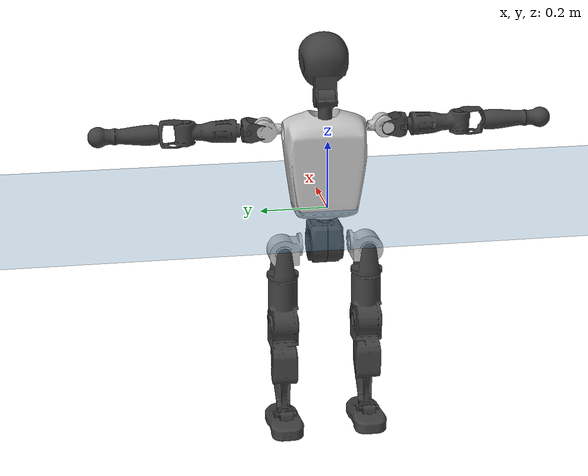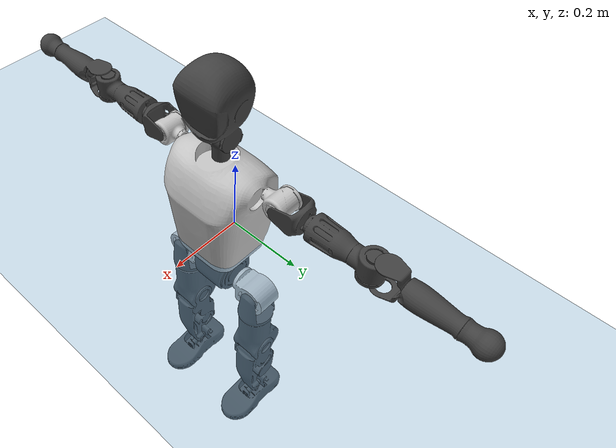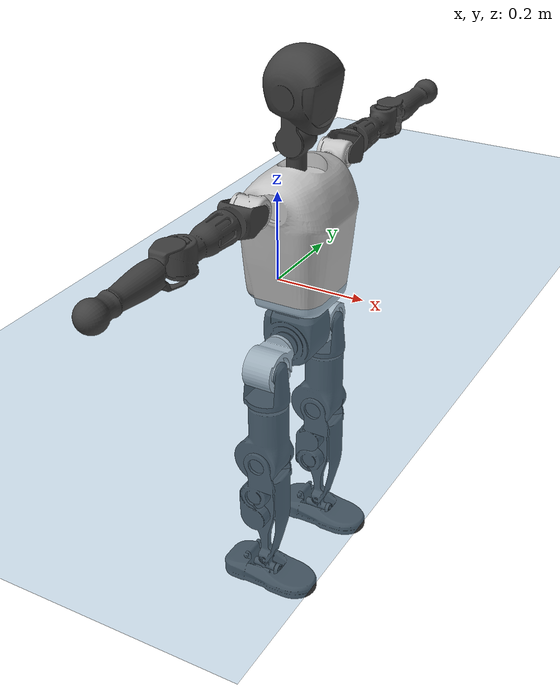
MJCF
<mujoco model="T1">
  <compiler angle="radian" assetdir="assets" balanceinertia="true" inertiafromgeom="false"/>

  <option timestep="0.005" density="1.2" viscosity="2e-05"/>

  <size nkey="1"/>

  <visual>
    <quality shadowsize="8192"/>
    <map shadowclip="0.5"/>
  </visual>

  <default>
    <default class="/">
      <joint armature="0.01" damping="0.01" frictionloss="0.1"/>
      <geom contype="0" conaffinity="0" group="1" solref="-1000 -80"/>
      <site size="0.01 0.005 0.005" group="5"/>
      <general forcelimited="true" biastype="affine" gainprm="25" biasprm="0 -25 -0.6"/>
      <default class="t1">
        <geom rgba="0.25 0.25 0.25 1"/>
        <default class="visual">
          <geom type="mesh" group="2"/>
        </default>
        <default class="collision">
          <geom group="3"/>
        </default>
        <default class="foot">
          <geom size="0.1115 0.05 0.015" type="box" condim="6" group="4" priority="1" solimp="0.015 1 0.015"/>
        </default>
        <default class="reward_collision_sphere">
          <geom group="5" rgba="1 0 0 1"/>
        </default>
      </default>
    </default>
  </default>

  <asset>
    <texture type="skybox" colorspace="auto" name="//unnamed_texture_0" builtin="gradient" rgb1="0.95 0.95 0.95" rgb2="0.95 0.95 0.95" width="100" height="600"/>
    <texture type="2d" colorspace="auto" name="texplane" builtin="checker" rgb1="0.345 0.575 0.748" rgb2="0.345 0.575 0.748" markrgb="1 1 1" width="512" height="512"/>
    <material name="MatPlane" class="/" texture="texplane" texuniform="true" texrepeat="2 2" specular="0.9"/>
    <mesh name="Trunk" class="/" file="Trunk.stl"/>
    <mesh name="H1" class="/" file="H1.stl"/>
    <mesh name="H2" class="/" file="H2.stl"/>
    <mesh name="AL1" class="/" file="AL1.stl"/>
    <mesh name="AL2" class="/" file="AL2.stl"/>
    <mesh name="AL3" class="/" file="AL3.stl"/>
    <mesh name="left_hand_link" class="/" file="left_hand_link.stl"/>
    <mesh name="AR1" class="/" file="AR1.stl"/>
    <mesh name="AR2" class="/" file="AR2.stl"/>
    <mesh name="AR3" class="/" file="AR3.stl"/>
    <mesh name="right_hand_link" class="/" file="right_hand_link.stl"/>
    <mesh name="Waist" class="/" file="Waist.stl"/>
    <mesh name="Hip_Pitch_Left" class="/" file="Hip_Pitch_Left.stl"/>
    <mesh name="Hip_Roll_Left" class="/" file="Hip_Roll_Left.stl"/>
    <mesh name="Hip_Yaw_Left" class="/" file="Hip_Yaw_Left.stl"/>
    <mesh name="Shank_Left" class="/" file="Shank_Left.stl"/>
    <mesh name="Ankle_Cross_Left" class="/" file="Ankle_Cross_Left.stl"/>
    <mesh name="left_foot_link" class="/" file="left_foot_link.stl"/>
    <mesh name="Hip_Pitch_Right" class="/" file="Hip_Pitch_Right.stl"/>
    <mesh name="Hip_Roll_Right" class="/" file="Hip_Roll_Right.stl"/>
    <mesh name="Hip_Yaw_Right" class="/" file="Hip_Yaw_Right.stl"/>
    <mesh name="Shank_Right" class="/" file="Shank_Right.stl"/>
    <mesh name="Ankle_Cross_Right" class="/" file="Ankle_Cross_Right.stl"/>
    <mesh name="right_foot_link" class="/" file="right_foot_link.stl"/>
  </asset>

  <worldbody>
    <geom name="floor" class="/" size="100 100 0.125" type="plane" group="0" material="MatPlane"/>
    <light name="toplight_shadow" class="/" pos="0 0 5" dir="0.0990148 0.0990148 -0.990148" type="directional" ambient="0.04 0.04 0.04" diffuse="0.55 0.55 0.55" specular="0.12 0.12 0.12"/>
    <light name="toplight_fill" class="/" pos="0 0 5" dir="0.0990148 0.0990148 -0.990148" type="directional" castshadow="false" ambient="0.04 0.04 0.04" diffuse="0.3 0.3 0.3" specular="0.08 0.08 0.08"/>
    <body name="trunk" childclass="t1" pos="7.98676e-05 0.00100158 0.000931635" quat="1 0.000121147 8.07984e-05 4.3305e-05">
      <inertial pos="0.0386657 0.00165073 0.112925" quat="0.99996 -5.84466e-05 -0.00897839 -0.000255987" mass="11.5844" diaginertia="0.01781 0.194378 0.0756466"/>
      <joint name="//unnamed_joint_0" type="free" armature="0" damping="0" frictionloss="0"/>
      <geom name="//unnamed_geom_1" class="visual" rgba="0.76 0.76 0.76 1" mesh="Trunk"/>
      <geom name="//unnamed_geom_2" class="collision" size="0.0745017 0.0993356 0.149003" pos="0.0431305 0 0.127142" type="box"/>
      <geom name="//unnamed_geom_3" class="reward_collision_sphere" size="0.114236" pos="0.0431305 0 0.105951"/>
      <geom name="//unnamed_geom_4" class="reward_collision_sphere" size="0.0149003" pos="0.0431305 0.102146 0"/>
      <geom name="//unnamed_geom_5" class="reward_collision_sphere" size="0.0149003" pos="0.0431305 -0.102146 0"/>
      <geom name="//unnamed_geom_6" class="reward_collision_sphere" size="0.0149003" pos="0.0431305 0.128583 0.190712"/>
      <geom name="//unnamed_geom_7" class="reward_collision_sphere" size="0.0149003" pos="0.0431305 -0.128583 0.190712"/>
      <site name="imu" pos="0.00265532 0.00441427 -0.00284186" size="0.00993356"/>
      <camera name="track" pos="0 -2.40343 0" quat="0.707107 0.707107 0 0" mode="trackcom"/>
      <camera name="ego_camera" pos="0.0876986 0 0.444995" quat="-0.5 -0.5 0.5 0.5"/>
      <body name="H1" pos="0.0453358 -0.00156983 0.258274" quat="1 -5.55188e-05 1.44524e-05 -7.50865e-05">
        <inertial pos="-0.000934142 0.000341779 0.0606779" quat="0.764533 -0.018766 0.00565179 0.644287" mass="0.431085" diaginertia="4.54473e-05 0.000553039 0.000201998"/>
        <joint name="AAHead_yaw" pos="0 0 0" axis="-0.00272794 -0.00413229 0.999988" stiffness="0.00264218" range="-1.57026 1.53779" armature="0.00986946" damping="0.0133006" frictionloss="0.0879249"/>
        <geom name="//unnamed_geom_8" class="visual" mesh="H1"/>
        <body name="H2" pos="-0.000627061 0.000856483 0.0641787" quat="1 -3.11187e-05 -1.5566e-05 3.14028e-05">
          <inertial pos="0.00619589 -0.00054824 0.105402" quat="0.988124 0.101812 -0.0817538 -0.0810042" mass="0.61788" diaginertia="0.000390495 0.00481297 0.00231471"/>
          <joint name="Head_pitch" pos="0 0 0" axis="0.00135853 -0.999999 -1.99653e-05" range="-1.22369 0.349249" armature="0.00986427" damping="0.00974337" frictionloss="0.0998211"/>
          <geom name="//unnamed_geom_9" class="visual" mesh="H2"/>
          <geom name="//unnamed_geom_10" class="collision" size="0.0794685" pos="0.00718841 0 0.116546"/>
          <geom name="//unnamed_geom_11" class="reward_collision_sphere" size="0.089402" pos="0.0143768 0 0.105951"/>
        </body>
      </body>
      <body name="AL1" pos="0.0423237 0.128782 0.232987" quat="0.999999 0.000555945 0.000452756 0.000742443">
        <inertial pos="-0.000556357 0.054784 0.000947688" quat="0.49691 0.498599 -0.508594 0.495793" mass="0.521478" diaginertia="0.000259883 0.00331909 0.000393874"/>
        <joint name="Left_Shoulder_Pitch" pos="0 0 0" axis="0.00046679 0.999999 -0.00155813" range="-3.31654 1.2433" armature="0.0100114" damping="0.014951" frictionloss="0.0993027"/>
        <geom name="//unnamed_geom_12" class="visual" rgba="0.76 0.76 0.76 1" mesh="AL1"/>
        <body name="AL2" pos="0.00105673 0.0585976 0.000223822" quat="1 -0.000124914 5.50647e-05 -5.70738e-05">
          <inertial pos="0.0044872 0.0475631 -0.000742955" quat="0.49403 0.512669 -0.478899 0.513577" mass="0.155775" diaginertia="7.70638e-05 0.000869175 0.000241792"/>
          <joint name="Left_Shoulder_Roll" pos="0 0 0" axis="-0.999999 -5.33916e-06 0.00109451" range="-1.57174 1.74063" armature="0.00953764" damping="0.00661095" frictionloss="0.100042"/>
          <geom name="//unnamed_geom_13" class="visual" mesh="AL2"/>
          <body name="AL3" pos="0.000544701 0.0754174 8.18404e-05" quat="1 -0.000223758 5.01558e-05 8.6477e-05">
            <inertial pos="-0.0020482 0.102822 0.000222363" quat="0.706331 0.707882 0.000125466 7.57005e-05" mass="1.01861" diaginertia="0.00252236 0.0324911 0.000831875"/>
            <joint name="Left_Elbow_Pitch" pos="0 0 0" axis="-0.00194996 -0.999991 0.00370731" range="-2.26776 2.30293" armature="0.00992233" damping="0.0122881" frictionloss="0.100946"/>
            <geom name="//unnamed_geom_14" class="visual" mesh="AL3"/>
            <geom name="//unnamed_geom_15" class="collision" size="0.0298007 0.0745017" pos="0 0.0600857 0" quat="0.707105 0.707108 0 0" type="cylinder"/>
            <geom name="//unnamed_geom_16" class="reward_collision_sphere" size="0.0357608"/>
            <body name="left_hand_link" pos="-0.000538659 0.178979 -0.00108275" quat="1 6.26909e-05 0.000155101 -7.20398e-05">
              <inertial pos="0.000324861 0.131262 0.000975276" quat="0.709229 0.70497 -0.000116696 -0.00339688" mass="0.321557" diaginertia="0.00154619 0.020424 0.00028529"/>
              <joint name="Left_Elbow_Yaw" pos="0 0 0" axis="-0.00191982 -0.00686926 0.999975" stiffness="0.0044798" range="-2.47893 -0.00337667" armature="0.00992005" damping="0.000777871" frictionloss="0.103152"/>
              <geom name="//unnamed_geom_17" class="visual" mesh="left_hand_link"/>
              <geom name="//unnamed_geom_18" class="collision" size="0.0298007 0.0869187" pos="0 0.156223 0" quat="0.707105 0.707108 0 0" type="cylinder"/>
              <geom name="//unnamed_geom_19" class="reward_collision_sphere" size="0.0496678"/>
              <geom name="//unnamed_geom_20" class="reward_collision_sphere" size="0.0347675" pos="0 0.132189 0"/>
              <geom name="//unnamed_geom_21" class="reward_collision_sphere" size="0.0347675" pos="0 0.258369 0"/>
            </body>
          </body>
        </body>
      </body>
      <body name="AR1" pos="0.0404417 -0.127165 0.231864" quat="1 4.79241e-05 0.000475488 1.5173e-08">
        <inertial pos="-0.00067622 -0.0541713 -0.00188523" quat="0.510563 0.492852 -0.505831 0.490468" mass="0.520584" diaginertia="0.000258661 0.00316511 0.00038666"/>
        <joint name="Right_Shoulder_Pitch" pos="0 0 0" axis="0.00479123 -0.999988 -0.00117229" stiffness="0.00397325" range="-1.22752 3.3169" armature="0.0102629" damping="0" frictionloss="0.089451"/>
        <geom name="//unnamed_geom_22" class="visual" rgba="0.76 0.76 0.76 1" mesh="AR1"/>
        <body name="AR2" pos="-0.00178049 -0.0557683 -0.000358136" quat="1 1.62853e-05 5.77811e-05 -9.46958e-06">
          <inertial pos="0.00329796 -0.0477703 0.000123079" quat="0.518489 0.482453 -0.509918 0.488255" mass="0.155863" diaginertia="7.56048e-05 0.000859602 0.000232356"/>
          <joint name="Right_Shoulder_Roll" pos="0 0 0" axis="-0.999987 0.00463356 -0.00209262" stiffness="0.00501613" range="-1.73845 1.57684" armature="0.00989703" damping="0" frictionloss="0.0964443"/>
          <geom name="//unnamed_geom_23" class="visual" mesh="AR2"/>
          <body name="AR3" pos="-0.00070155 -0.0731279 0.000780311" quat="1 -6.79236e-05 -0.000179216 -0.000149024">
            <inertial pos="-0.00115976 -0.103076 0.000233987" quat="0.708155 0.706057 0.000297989 -0.000205381" mass="0.992532" diaginertia="0.00245333 0.0310624 0.000834301"/>
            <joint name="Right_Elbow_Pitch" pos="0 0 0" axis="0.00395143 0.999992 -0.00100023" range="-2.28083 2.2507" armature="0.00996799" damping="0.00874819" frictionloss="0.0992194"/>
            <geom name="//unnamed_geom_24" class="visual" mesh="AR3"/>
            <geom name="//unnamed_geom_25" class="collision" size="0.0298007 0.0745017" pos="0 -0.0600857 0" quat="0.707105 0.707108 0 0" type="cylinder"/>
            <geom name="//unnamed_geom_26" class="reward_collision_sphere" size="0.0357608"/>
            <body name="right_hand_link" pos="-0.000847368 -0.175365 0.00169562" quat="1 3.00921e-05 1.8521e-05 3.17493e-06">
              <inertial pos="-0.00027902 -0.131349 -0.000204137" quat="0.706242 0.70797 0.000701575 -0.000925474" mass="0.321266" diaginertia="0.00155147 0.0201637 0.000288035"/>
              <joint name="Right_Elbow_Yaw" pos="0 0 0" axis="-0.000237423 0.00248527 0.999997" range="-0.00364492 2.44501" armature="0.00963727" damping="0.00657212" frictionloss="0.108535"/>
              <geom name="//unnamed_geom_27" class="visual" mesh="right_hand_link"/>
              <geom name="//unnamed_geom_28" class="collision" size="0.0298007 0.0869187" pos="0 -0.156223 0" quat="0.707105 0.707108 0 0" type="cylinder"/>
              <geom name="//unnamed_geom_29" class="reward_collision_sphere" size="0.0496678"/>
              <geom name="//unnamed_geom_30" class="reward_collision_sphere" size="0.0347675" pos="0 -0.132189 0"/>
              <geom name="//unnamed_geom_31" class="reward_collision_sphere" size="0.0347675" pos="0 -0.258369 0"/>
            </body>
          </body>
        </body>
      </body>
      <body name="Waist" pos="0.0452376 9.23635e-05 -0.124187" quat="1 0.000141327 -4.41877e-05 -0.000170101">
        <inertial pos="-0.00094063 -0.000780886 0.00774612" quat="0.983436 0.00276872 -0.18121 0.00308749" mass="2.52933" diaginertia="0.00100861 0.0133439 0.00629236"/>
        <joint name="Waist" pos="0 0 0" axis="0.00667033 0.000238859 0.999978" range="-1.55898 1.5699" armature="0.0100116" damping="0.0130557" frictionloss="0.098665"/>
        <geom name="//unnamed_geom_32" class="visual" mesh="Waist"/>
        <body name="Hip_Pitch_Left" pos="0.00010966 0.126344 -0.00189653" quat="1 4.87321e-05 -3.31061e-05 4.64082e-05">
          <inertial pos="0.000820946 -0.00821667 -0.019257" quat="0.975464 0.219569 0.0157285 0.00354405" mass="1.02237" diaginertia="0.000346037 0.00365248 0.00167396"/>
          <joint name="Left_Hip_Pitch" pos="0 0 0" axis="0.0013161 0.999996 0.00252694" range="-1.79874 1.60647" armature="0.0108942" damping="0.00957517" frictionloss="0.0944823"/>
          <geom name="//unnamed_geom_33" class="visual" rgba="0.76 0.76 0.76 1" mesh="Hip_Pitch_Left"/>
          <body name="Hip_Roll_Left" pos="0.0016711 0.000258476 -0.0224391" quat="1 -0.000401321 8.50384e-05 -0.000357766">
            <inertial pos="0.00203734 0.000191368 -0.0579032" quat="0.700342 -0.0028031 -0.00488649 0.713785" mass="0.36358" diaginertia="0.00032646 0.00372195 0.000680552"/>
            <joint name="Left_Hip_Roll" pos="0 0 0" axis="-0.999992 0.000767455 -0.00391017" stiffness="0.000156132" range="-1.56759 0.199484" armature="0.0108124" damping="0.0170554" frictionloss="0.10204"/>
            <geom name="//unnamed_geom_34" class="visual" mesh="Hip_Roll_Left"/>
            <geom name="//unnamed_geom_35" class="reward_collision_sphere" size="0.0546346"/>
            <body name="Hip_Yaw_Left" pos="0.000187191 -0.000118392 -0.0854262" quat="1 1.71897e-05 -3.54921e-05 2.24695e-05">
              <inertial pos="-0.00609073 -0.00112806 -0.0946519" quat="0.695437 -0.0354201 -0.0326141 0.716973" mass="2.15191" diaginertia="0.00492979 0.0621629 0.003456"/>
              <joint name="Left_Hip_Yaw" pos="0 0 0" axis="0.000191447 -3.71431e-05 -1" range="-0.996318 1.03792" armature="0.009828" damping="0.0102843" frictionloss="0.0985458"/>
              <geom name="//unnamed_geom_36" class="visual" mesh="Hip_Yaw_Left"/>
              <geom name="//unnamed_geom_37" class="collision" size="0.0496678 0.0794685" type="cylinder"/>
              <body name="Shank_Left" pos="-0.00756475 -0.000103034 -0.143982" quat="1 7.30721e-05 -5.8116e-05 -0.000139458">
                <inertial pos="-0.00425252 0.00165812 -0.130403" quat="0.997578 0.00155813 -0.0238935 0.0653048" mass="1.64943" diaginertia="0.00668263 0.0861133 0.00246851"/>
                <joint name="Left_Knee_Pitch" pos="0 0 0" axis="0.00051418 1 -0.000616904" range="-0.0194502 2.35983" armature="0.00987134" damping="0.00966019" frictionloss="0.101098"/>
                <geom name="//unnamed_geom_38" class="visual" mesh="Shank_Left"/>
                <geom name="//unnamed_geom_39" class="collision" size="0.0496678 0.0745017" pos="0 0 -0.127142" type="cylinder"/>
                <geom name="//unnamed_geom_40" class="reward_collision_sphere" size="0.0645681"/>
                <body name="Ankle_Cross_Left" pos="-0.00108639 8.70338e-05 -0.296422" quat="1 -5.30892e-05 0.000285064 -3.95194e-06">
                  <inertial pos="-0.00156892 0.000491696 -0.00908471" quat="0.443986 0.548615 0.552482 0.443465" mass="0.0717739" diaginertia="5.60825e-06 6.39915e-05 1.50559e-05"/>
                  <joint name="Left_Ankle_Pitch" pos="0 0 0" axis="0.00097639 0.999999 0.000691831" stiffness="0.00126489" range="-0.835085 0.350808" armature="0.0102705" damping="0.0159939" frictionloss="0.0953097"/>
                  <geom name="//unnamed_geom_41" class="visual" mesh="Ankle_Cross_Left"/>
                  <body name="left_foot_link" pos="0.000508058 -0.000275286 -0.0120302" quat="1 0.000217964 0.000363644 0.00025998">
                    <inertial pos="-0.000750921 0.000239638 -0.0106316" quat="-0.00159135 0.619233 -0.0033628 0.785198" mass="0.663241" diaginertia="0.000499229 0.00584128 0.00295269"/>
                    <joint name="Left_Ankle_Roll" pos="0 0 0" axis="-0.999991 0.00428697 -0.000332175" range="-0.445804 0.441181" armature="0.00985698" damping="0.0164472" frictionloss="0.0992603"/>
                    <geom name="//unnamed_geom_42" class="visual" mesh="left_foot_link"/>
                    <geom name="left_foot" class="foot" size="0.104289 0.0496896 0.0158517" pos="0.00718841 0 -0.0158927"/>
                    <geom name="//unnamed_geom_44" class="reward_collision_sphere" size="0.0516545" pos="0.00718841 0 -0.0158927"/>
                    <geom name="//unnamed_geom_45" class="reward_collision_sphere" size="0.0298007" pos="0.0682899 -0.0276394 -0.0158927"/>
                    <geom name="//unnamed_geom_46" class="reward_collision_sphere" size="0.0298007" pos="-0.0503189 -0.0276394 -0.0158927"/>
                    <site name="left_foot" class="foot" pos="0.00718841 0 -0.0158927" size="0.00993356"/>
                  </body>
                </body>
              </body>
            </body>
          </body>
        </body>
        <body name="Hip_Pitch_Right" pos="-0.000945199 -0.128072 -0.000442954" quat="1 0.000410867 0.000318511 3.28046e-05">
          <inertial pos="-0.000463856 0.00997236 -0.0175708" quat="0.973317 -0.229166 0.0114754 -0.00244395" mass="1.00237" diaginertia="0.000347322 0.00370468 0.0016242"/>
          <joint name="Right_Hip_Pitch" pos="0 0 0" axis="-0.00171197 -0.999998 -0.000603577" range="-1.57324 1.75585" armature="0.00990942" damping="0.0108677" frictionloss="0.100379"/>
          <geom name="//unnamed_geom_47" class="visual" rgba="0.76 0.76 0.76 1" mesh="Hip_Pitch_Right"/>
          <body name="Hip_Roll_Right" pos="0.00174501 -0.00024711 -0.0216386" quat="1 -0.000115872 -0.000130283 -0.000154109">
            <inertial pos="0.00105549 -0.0012077 -0.0569258" quat="0.713393 -0.00608686 -0.0106032 0.700658" mass="0.384076" diaginertia="0.00033409 0.00388301 0.000688929"/>
            <joint name="Right_Hip_Roll" pos="0 0 0" axis="-0.999994 -0.000517939 0.00353162" stiffness="0.00034136" range="-0.156322 1.58267" armature="0.00983692" damping="0.00652089" frictionloss="0.0958252"/>
            <geom name="//unnamed_geom_48" class="visual" mesh="Hip_Roll_Right"/>
            <geom name="//unnamed_geom_49" class="reward_collision_sphere" size="0.0546346"/>
            <body name="Hip_Yaw_Right" pos="0.00107339 0.000599763 -0.0873039" quat="1 5.22385e-06 -1.48386e-05 -2.96046e-05">
              <inertial pos="-0.00522613 0.000122886 -0.0964692" quat="0.717183 -0.0332161 -0.0354714 0.695189" mass="2.10637" diaginertia="0.00491046 0.0625988 0.00345189"/>
              <joint name="Right_Hip_Yaw" pos="0 0 0" axis="-0.0104193 0.0107524 -0.999888" stiffness="0.00403093" range="-0.994494 0.99825" armature="0.0105824" damping="0" frictionloss="0.0990081"/>
              <geom name="//unnamed_geom_50" class="visual" mesh="Hip_Yaw_Right"/>
              <geom name="//unnamed_geom_51" class="collision" size="0.0496678 0.0794685" type="cylinder"/>
              <body name="Shank_Right" pos="-0.00894761 -0.000739508 -0.140714" quat="1 1.31249e-05 2.00506e-05 0.000265334">
                <inertial pos="-0.0047416 -0.000246635 -0.130781" quat="0.999153 -0.0004897 -0.0253026 -0.0324531" mass="1.80265" diaginertia="0.00699474 0.0906428 0.00269742"/>
                <joint name="Right_Knee_Pitch" pos="0 0 0" axis="0.00244581 -0.999995 0.00205338" range="-2.30671 -0.0177435" armature="0.0109587" damping="0.0104362" frictionloss="0.100012"/>
                <geom name="//unnamed_geom_52" class="visual" mesh="Shank_Right"/>
                <geom name="//unnamed_geom_53" class="collision" size="0.0496678 0.0745017" pos="0 0 -0.127142" type="cylinder"/>
                <geom name="//unnamed_geom_54" class="reward_collision_sphere" size="0.0645681"/>
                <body name="Ankle_Cross_Right" pos="0.000460532 -0.0010537 -0.297516" quat="1 1.536e-05 -2.85812e-05 8.06002e-05">
                  <inertial pos="-0.00243158 0.000319067 -0.00844681" quat="0.446633 0.551225 0.550873 0.439555" mass="0.0704844" diaginertia="5.56194e-06 6.40615e-05 1.48793e-05"/>
                  <joint name="Right_Ankle_Pitch" pos="0 0 0" axis="0.00018922 -0.999996 -0.00277772" range="-0.374971 0.841097" armature="0.00993019" damping="0.0109933" frictionloss="0.100629"/>
                  <geom name="//unnamed_geom_55" class="visual" mesh="Ankle_Cross_Right"/>
                  <body name="right_foot_link" pos="0.00195585 -0.00116264 -0.0122858" quat="1 3.99667e-05 -3.04211e-05 -4.68575e-06">
                    <inertial pos="-0.00214666 0.000217494 -0.009643" quat="0.000257437 0.621302 -0.000771395 0.783571" mass="0.670644" diaginertia="0.000515589 0.00592153 0.00293175"/>
                    <joint name="Right_Ankle_Roll" pos="0 0 0" axis="-1 -0.000676366 0.000139795" stiffness="0.001497" range="-0.477241 0.440363" armature="0.0102392" damping="0" frictionloss="0.101278"/>
                    <geom name="//unnamed_geom_56" class="visual" mesh="right_foot_link"/>
                    <geom name="right_foot" class="foot" size="0.0996834 0.0475177 0.0155006" pos="0.00718841 0 -0.0158927"/>
                    <geom name="//unnamed_geom_58" class="reward_collision_sphere" size="0.0397342"/>
                    <geom name="//unnamed_geom_59" class="reward_collision_sphere" size="0.0298007" pos="0.00718841 0 -0.0158927"/>
                    <geom name="//unnamed_geom_60" class="reward_collision_sphere" size="0.0298007" pos="0.0682899 0.0276394 -0.0158927"/>
                    <geom name="//unnamed_geom_61" class="reward_collision_sphere" size="0.0298007" pos="-0.0503189 0.0276394 -0.0158927"/>
                    <site name="right_foot" class="foot" pos="0.00718841 0 -0.0158927" size="0.00993356"/>
                  </body>
                </body>
              </body>
            </body>
          </body>
        </body>
      </body>
    </body>
  </worldbody>

  <contact>
    <pair class="/" geom1="floor" geom2="left_foot" name="//unnamed_contact_0"/>
    <pair class="/" geom1="floor" geom2="right_foot" name="//unnamed_contact_1"/>
  </contact>

  <actuator>
    <general name="AAHead_yaw" class="/" joint="AAHead_yaw" forcerange="-6.76206 6.76206" gainprm="24.6206" biasprm="0 -24.6206 -0.578111"/>
    <general name="Head_pitch" class="/" joint="Head_pitch" forcerange="-6.983 6.983" gainprm="24.6206" biasprm="0 -24.6206 -0.578111"/>
    <general name="Left_Shoulder_Pitch" class="/" joint="Left_Shoulder_Pitch" forcerange="-18.0875 18.0875" gainprm="24.6206" biasprm="0 -24.6206 -0.578111"/>
    <general name="Left_Shoulder_Roll" class="/" joint="Left_Shoulder_Roll" forcerange="-18.3593 18.3593" gainprm="24.6206" biasprm="0 -24.6206 -0.578111"/>
    <general name="Left_Elbow_Pitch" class="/" joint="Left_Elbow_Pitch" forcerange="-17.8887 17.8887" gainprm="24.6206" biasprm="0 -24.6206 -0.578111"/>
    <general name="Left_Elbow_Yaw" class="/" joint="Left_Elbow_Yaw" forcerange="-18.6334 18.6334" gainprm="24.6206" biasprm="0 -24.6206 -0.578111"/>
    <general name="Right_Shoulder_Pitch" class="/" joint="Right_Shoulder_Pitch" forcerange="-17.3057 17.3057" gainprm="24.6206" biasprm="0 -24.6206 -0.578111"/>
    <general name="Right_Shoulder_Roll" class="/" joint="Right_Shoulder_Roll" forcerange="-18.3035 18.3035" gainprm="24.6206" biasprm="0 -24.6206 -0.578111"/>
    <general name="Right_Elbow_Pitch" class="/" joint="Right_Elbow_Pitch" forcerange="-19.1072 19.1072" gainprm="24.6206" biasprm="0 -24.6206 -0.578111"/>
    <general name="Right_Elbow_Yaw" class="/" joint="Right_Elbow_Yaw" forcerange="-17.1264 17.1264" gainprm="24.6206" biasprm="0 -24.6206 -0.578111"/>
    <general name="Waist" class="/" joint="Waist" forcerange="-28.6846 28.6846" gainprm="24.6206" biasprm="0 -24.6206 -0.578111"/>
    <general name="Left_Hip_Pitch" class="/" joint="Left_Hip_Pitch" forcerange="-44.2035 44.2035" gainprm="24.6206" biasprm="0 -24.6206 -0.578111"/>
    <general name="Left_Hip_Roll" class="/" joint="Left_Hip_Roll" forcerange="-30.4932 30.4932" gainprm="24.6206" biasprm="0 -24.6206 -0.578111"/>
    <general name="Left_Hip_Yaw" class="/" joint="Left_Hip_Yaw" forcerange="-28.766 28.766" gainprm="24.6206" biasprm="0 -24.6206 -0.578111"/>
    <general name="Left_Knee_Pitch" class="/" joint="Left_Knee_Pitch" forcerange="-60.1841 60.1841" gainprm="24.6206" biasprm="0 -24.6206 -0.578111"/>
    <general name="Left_Ankle_Pitch" class="/" joint="Left_Ankle_Pitch" forcerange="-19.9988 19.9988" gainprm="24.6206" biasprm="0 -24.6206 -0.578111"/>
    <general name="Left_Ankle_Roll" class="/" joint="Left_Ankle_Roll" forcerange="-15.6741 15.6741" gainprm="24.6206" biasprm="0 -24.6206 -0.578111"/>
    <general name="Right_Hip_Pitch" class="/" joint="Right_Hip_Pitch" forcerange="-44.7269 44.7269" gainprm="24.6206" biasprm="0 -24.6206 -0.578111"/>
    <general name="Right_Hip_Roll" class="/" joint="Right_Hip_Roll" forcerange="-29.4379 29.4379" gainprm="24.6206" biasprm="0 -24.6206 -0.578111"/>
    <general name="Right_Hip_Yaw" class="/" joint="Right_Hip_Yaw" forcerange="-32.0408 32.0408" gainprm="24.6206" biasprm="0 -24.6206 -0.578111"/>
    <general name="Right_Knee_Pitch" class="/" joint="Right_Knee_Pitch" forcerange="-59.3899 59.3899" gainprm="24.6206" biasprm="0 -24.6206 -0.578111"/>
    <general name="Right_Ankle_Pitch" class="/" joint="Right_Ankle_Pitch" forcerange="-19.9304 19.9304" gainprm="24.6206" biasprm="0 -24.6206 -0.578111"/>
    <general name="Right_Ankle_Roll" class="/" joint="Right_Ankle_Roll" forcerange="-15.1347 15.1347" gainprm="24.6206" biasprm="0 -24.6206 -0.578111"/>
  </actuator>

  <sensor>
    <gyro site="imu" name="imu_angular_velocity"/>
    <velocimeter site="imu" name="imu_linear_velocity"/>
    <framelinvel objtype="site" objname="left_foot" name="left_foot_global_linear_velocity"/>
    <framelinvel objtype="site" objname="right_foot" name="right_foot_global_linear_velocity"/>
  </sensor>

  <keyframe>
    <key name="home" qpos="0 0 0.6385 1 0 0 0 0 0 0 1.4 0 -0.4 0 -1.4 0 0.4 0 -0.4 0 0 0.8 -0.4 0 0.4 0 0 -0.8 0.4 0"/>
  </keyframe>
</mujoco>
